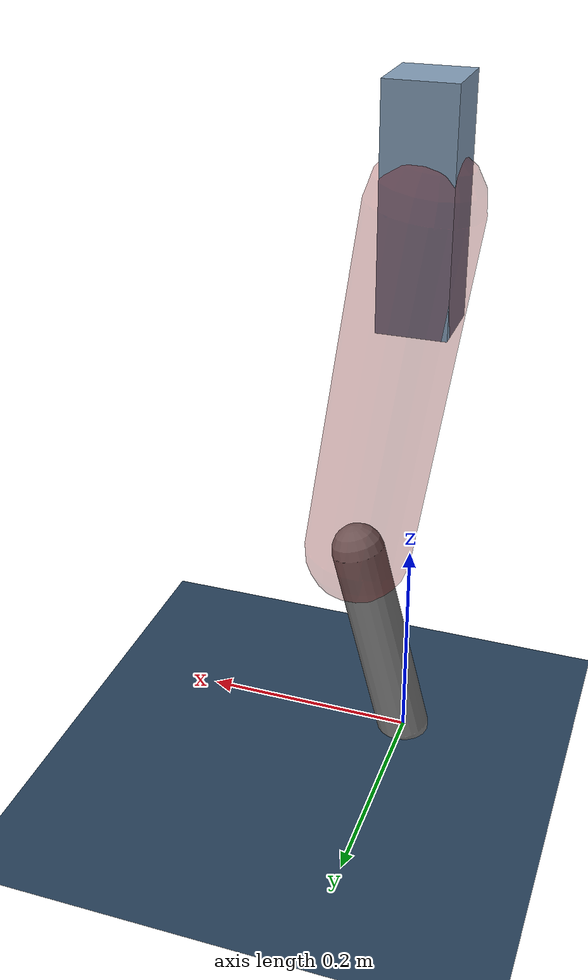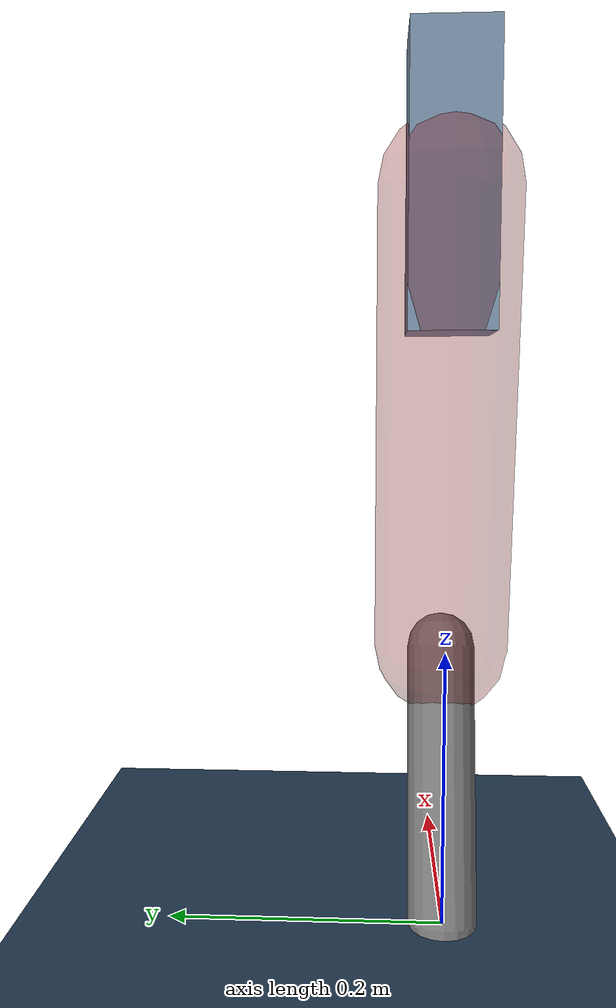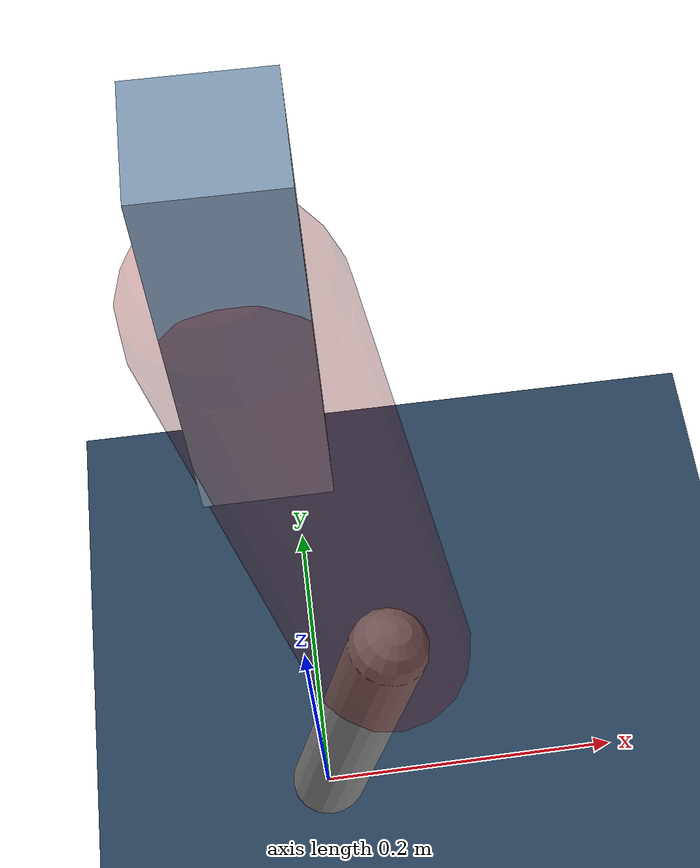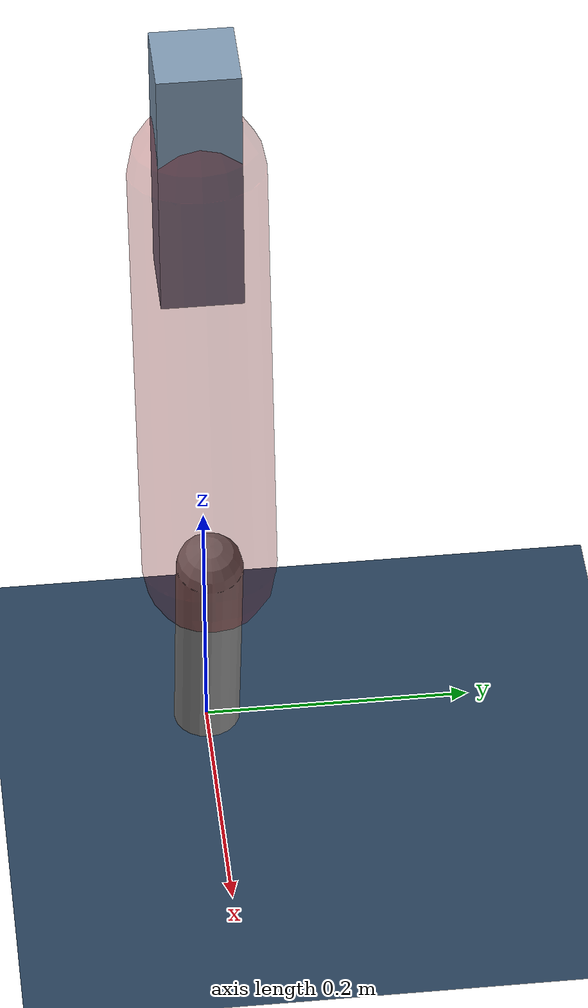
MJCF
<mujoco model="Hopper2D">
	<compiler inertiafromgeom="true" angle="radian" />
	<option timestep="0.001" integrator="implicit" cone="elliptic" solver="Newton" tolerance="1e-10" />

	<default>
		<geom contype="1" conaffinity="1" condim="3" friction="2 0.005 0.0001" solref="0.005 1" />
		<joint limited="true" damping="0.1" />
	</default>

	<asset>
		<texture name="skybox" type="skybox" builtin="gradient" rgb1=".4 .6 .8" rgb2="0 0 0" width="800" height="800" />
		<texture name="grid" type="2d" builtin="checker" rgb1=".1 .2 .3" rgb2=".2 .3 .4" width="300" height="300" mark="edge" markrgb=".2 .3 .4" />
		<material name="ground" texture="grid" texrepeat="1 1" texuniform="true" reflectance="0.1" />
		<material name="leg" rgba="0.5 0.6 0.7 1" />
	</asset>

	<worldbody>

		<geom name="floor" type="plane" size="5 5 0.25" material="ground" />

		<light directional="false" diffuse="0.8 0.8 0.8" specular="0.3 0.3 0.3" pos="0 0 2" dir="0 0 -1" />
		<light mode="targetbodycom" target="base" directional="false" diffuse="0.8 0.8 0.8" specular="0.3 0.3 0.3" pos="0 0 2" dir="0 0 -1" />

		<camera name="fixed" pos="0 -2 1" xyaxes="1 0 0 0 0 1" />
		<camera name="tracking" mode="trackcom" pos="0 -3 1" />

		<body name="root" pos="0 0 0.5246881936554013">
			<joint name="slide_x" type="slide" axis="1 0 0" range="-100 100" />
			<joint name="slide_z" type="slide" axis="0 0 1" range="0 10" />

			<body name="base" pos="0 0 0">
				<geom name="torso" type="box" size="0.03 0.03 0.1" mass="3.2270000000000003" material="leg" />

				<body name="link1" pos="0 0 0" euler="0 1.4211755884037758 0">
					<joint type="hinge" axis="0 -1 0" pos="0 0 0" name="hinge1" limited="true" range="-3.14 3.14" stiffness="0" damping="0.1" />
					<geom name="thigh" type="capsule" fromto="0 0 0 0.333935674332681 0 0" size="0.05" rgba="0.5 0 0 0.3" mass="1.0817263206982388" />

					<body name="link2" pos="0.333935674332681 0 0" euler="0 0.40018899762049637 0">
						<joint type="hinge" axis="0 -1 0" pos="0 0 0" name="hinge2" limited="true" range="-3.14 3.14" stiffness="0" damping="0.1" />
						<geom name="shank" type="capsule" fromto="0 0 0 0.20075251932272034 0 0" size="0.025" mass="0.40150201545817626" />

					</body>
				</body>
			</body>
		</body>
	</worldbody>

	<actuator>
		<motor name="torque1" joint="hinge1" ctrlrange="-59.789506760123146 59.789506760123146" ctrllimited="true" gear="1" />
		<motor name="torque2" joint="hinge2" ctrlrange="-223.68442503094278 223.68442503094278" ctrllimited="true" gear="1" />
	</actuator>
</mujoco>
